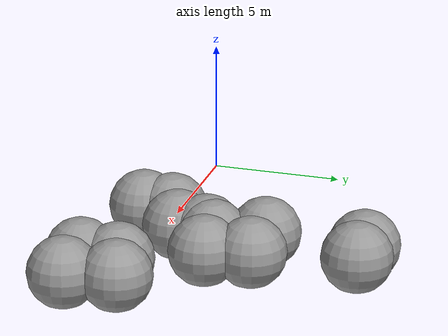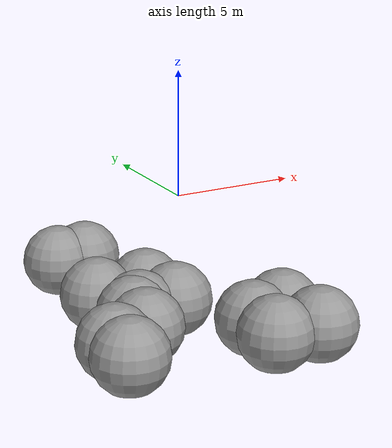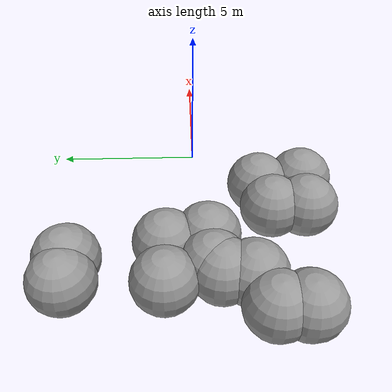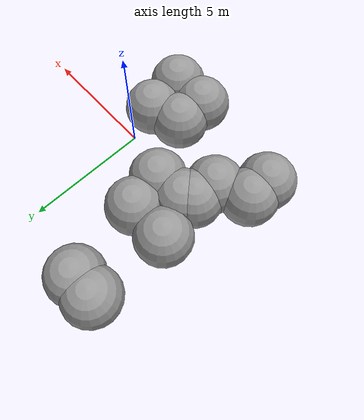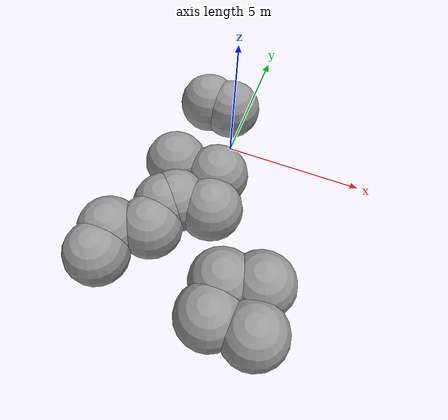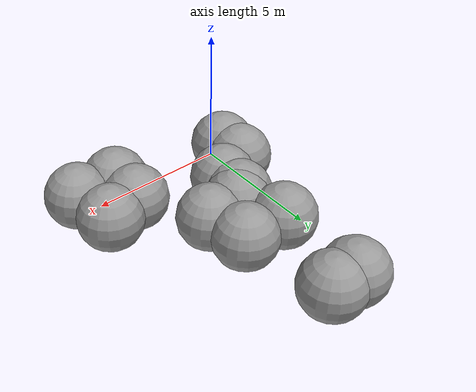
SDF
<sdf version="1.7">
 <world name="default">
  <gravity>0 0 -9.8</gravity>
  <magnetic_field>6e-06 2.3e-05 -4.2e-05</magnetic_field>
  <atmosphere type="adiabatic"/>
  <physics name="default_physics" default="0" type="ode">
   <max_step_size>0.001</max_step_size>
   <real_time_factor>1</real_time_factor>
   <real_time_update_rate>1000</real_time_update_rate>
  </physics>
  <scene>
   <ambient>0.4 0.4 0.4 1</ambient>
   <background>0.7 0.7 0.7 1</background>
   <shadows>1</shadows>
   <grid>0</grid>
   <origin_visual>0</origin_visual>
  </scene>
  <spherical_coordinates>
   <surface_model>EARTH_WGS84</surface_model>
   <latitude_deg>0</latitude_deg>
   <longitude_deg>0</longitude_deg>
   <elevation>0</elevation>
   <heading_deg>0</heading_deg>
  </spherical_coordinates>
  <light name="RetailShop_CeilingLight_001" type="point">
   <pose>2.77442 -3.62815 3.17847 0 -0 0</pose>
   <diffuse>0.5 0.5 0.5 1</diffuse>
   <specular>0.1 0.1 0.1 1</specular>
   <attenuation>
    <range>20</range>
    <constant>0.32</constant>
    <linear>0.01</linear>
    <quadratic>0.03</quadratic>
   </attenuation>
   <cast_shadows>0</cast_shadows>
   <direction>0 0 -1</direction>
   <spot><inner_angle>0</inner_angle><outer_angle>0</outer_angle><falloff>0</falloff></spot>
  </light>
  <light name="RetailShop_CeilingLight_002" type="point">
   <pose>5.38399 -5.38371 3.17847 0 -0 0</pose>
   <diffuse>0.5 0.5 0.5 1</diffuse>
   <specular>0.1 0.1 0.1 1</specular>
   <attenuation>
    <range>20</range>
    <constant>0.32</constant>
    <linear>0.01</linear>
    <quadratic>0.03</quadratic>
   </attenuation>
   <cast_shadows>0</cast_shadows>
   <direction>0 0 -1</direction>
   <spot><inner_angle>0</inner_angle><outer_angle>0</outer_angle><falloff>0</falloff></spot>
  </light>
  <light name="RetailShop_CeilingLight_003" type="point">
   <pose>5.38399 0.04192 3.17847 0 -0 0</pose>
   <diffuse>0.5 0.5 0.5 1</diffuse>
   <specular>0.1 0.1 0.1 1</specular>
   <attenuation>
    <range>20</range>
    <constant>0.32</constant>
    <linear>0.01</linear>
    <quadratic>0.03</quadratic>
   </attenuation>
   <cast_shadows>0</cast_shadows>
   <direction>0 0 -1</direction>
   <spot><inner_angle>0</inner_angle><outer_angle>0</outer_angle><falloff>0</falloff></spot>
  </light>
  <light name="RetailShop_CeilingLight_004" type="point">
   <pose>-3.21067 -5.38371 3.17847 0 -0 0</pose>
   <diffuse>0.5 0.5 0.5 1</diffuse>
   <specular>0.1 0.1 0.1 1</specular>
   <attenuation>
    <range>20</range>
    <constant>0.32</constant>
    <linear>0.01</linear>
    <quadratic>0.03</quadratic>
   </attenuation>
   <cast_shadows>0</cast_shadows>
   <direction>0 0 -1</direction>
   <spot><inner_angle>0</inner_angle><outer_angle>0</outer_angle><falloff>0</falloff></spot>
  </light>
  <light name="RetailShop_CeilingLight_005" type="point">
   <pose>-3.271 2.68593 3.17847 0 -0 0</pose>
   <diffuse>0.5 0.5 0.5 1</diffuse>
   <specular>0.1 0.1 0.1 1</specular>
   <attenuation>
    <range>20</range>
    <constant>0.32</constant>
    <linear>0.01</linear>
    <quadratic>0.03</quadratic>
   </attenuation>
   <cast_shadows>0</cast_shadows>
   <direction>0 0 -1</direction>
   <spot><inner_angle>0</inner_angle><outer_angle>0</outer_angle><falloff>0</falloff></spot>
  </light>
  <light name="RetailShop_CeilingLight_006" type="point">
   <pose>1.4932 4.69237 3.17847 0 -0 0</pose>
   <diffuse>0.5 0.5 0.5 1</diffuse>
   <specular>0.1 0.1 0.1 1</specular>
   <attenuation>
    <range>20</range>
    <constant>0.32</constant>
    <linear>0.01</linear>
    <quadratic>0.03</quadratic>
   </attenuation>
   <cast_shadows>0</cast_shadows>
   <direction>0 0 -1</direction>
   <spot><inner_angle>0</inner_angle><outer_angle>0</outer_angle><falloff>0</falloff></spot>
  </light>
  <model name="fly_spawn_13">
   <link name="link_0">
    <inertial>
     <mass>1</mass>
     <inertia><ixx>0.1</ixx><ixy>0</ixy><ixz>0</ixz><iyy>0.1</iyy><iyz>0</iyz><izz>0.1</izz></inertia>
     <pose>0 0 -2.0 0 -0 0</pose>
    </inertial>
    <visual name="visual">
     <pose>0 0 -2.0 0 -0 0</pose>
     <geometry><sphere><radius>1.5</radius></sphere></geometry>
     <material>
      <lighting>1</lighting>
      <script><uri>file://media/materials/scripts/gazebo.material</uri><name>Gazebo/Grey</name></script>
      <shader type="pixel"><normal_map>__default__</normal_map></shader>
      <ambient>0.3 0.3 0.3 1</ambient>
      <diffuse>0.7 0.7 0.7 1</diffuse>
      <specular>0.01 0.01 0.01 1</specular>
      <emissive>0 0 0 1</emissive>
     </material>
    </visual>
    <collision name="collision">
     <pose>0 0 -2.0 0 -0 0</pose>
     <geometry><sphere><radius>1.5</radius></sphere></geometry>
     <surface>
      <friction>
       <ode><mu>1</mu><mu2>1</mu2><fdir1>0 0 0</fdir1><slip1>0</slip1><slip2>0</slip2></ode>
       <torsional>
        <coefficient>1</coefficient>
        <patch_radius>0</patch_radius>
        <surface_radius>0</surface_radius>
        <use_patch_radius>1</use_patch_radius>
        <ode><slip>0</slip></ode>
       </torsional>
      </friction>
      <bounce><restitution_coefficient>0</restitution_coefficient><threshold>1e+06</threshold></bounce>
      <contact>
       <collide_without_contact>0</collide_without_contact>
       <collide_without_contact_bitmask>1</collide_without_contact_bitmask>
       <collide_bitmask>1</collide_bitmask>
       <ode>
        <soft_cfm>0</soft_cfm>
        <soft_erp>0.2</soft_erp>
        <kp>1e+13</kp>
        <kd>1</kd>
        <max_vel>0.01</max_vel>
        <min_depth>0</min_depth>
       </ode>
       <bullet>
        <split_impulse>1</split_impulse>
        <split_impulse_penetration_threshold>-0.01</split_impulse_penetration_threshold>
        <soft_cfm>0</soft_cfm>
        <soft_erp>0.2</soft_erp>
        <kp>1e+13</kp>
        <kd>1</kd>
       </bullet>
      </contact>
     </surface>
    </collision>
   </link>
   <static>1</static>
   <pose>-1.69652 5.44304 -2.0 0 -0 0</pose>
  </model>
  <model name="fly_spawn_0">
   <link name="link_0">
    <inertial>
     <mass>1</mass>
     <inertia><ixx>0.1</ixx><ixy>0</ixy><ixz>0</ixz><iyy>0.1</iyy><iyz>0</iyz><izz>0.1</izz></inertia>
     <pose>0 0 -2.0 0 -0 0</pose>
    </inertial>
    <visual name="visual">
     <pose>0 0 -2.0 0 -0 0</pose>
     <geometry><sphere><radius>1.5</radius></sphere></geometry>
     <material>
      <lighting>1</lighting>
      <script><uri>file://media/materials/scripts/gazebo.material</uri><name>Gazebo/Grey</name></script>
      <shader type="pixel"><normal_map>__default__</normal_map></shader>
      <ambient>0.3 0.3 0.3 1</ambient>
      <diffuse>0.7 0.7 0.7 1</diffuse>
      <specular>0.01 0.01 0.01 1</specular>
      <emissive>0 0 0 1</emissive>
     </material>
    </visual>
    <collision name="collision">
     <pose>0 0 -2.0 0 -0 0</pose>
     <geometry><sphere><radius>1.5</radius></sphere></geometry>
     <surface>
      <friction>
       <ode><mu>1</mu><mu2>1</mu2><fdir1>0 0 0</fdir1><slip1>0</slip1><slip2>0</slip2></ode>
       <torsional>
        <coefficient>1</coefficient>
        <patch_radius>0</patch_radius>
        <surface_radius>0</surface_radius>
        <use_patch_radius>1</use_patch_radius>
        <ode><slip>0</slip></ode>
       </torsional>
      </friction>
      <bounce><restitution_coefficient>0</restitution_coefficient><threshold>1e+06</threshold></bounce>
      <contact>
       <collide_without_contact>0</collide_without_contact>
       <collide_without_contact_bitmask>1</collide_without_contact_bitmask>
       <collide_bitmask>1</collide_bitmask>
       <ode>
        <soft_cfm>0</soft_cfm>
        <soft_erp>0.2</soft_erp>
        <kp>1e+13</kp>
        <kd>1</kd>
        <max_vel>0.01</max_vel>
        <min_depth>0</min_depth>
       </ode>
       <bullet>
        <split_impulse>1</split_impulse>
        <split_impulse_penetration_threshold>-0.01</split_impulse_penetration_threshold>
        <soft_cfm>0</soft_cfm>
        <soft_erp>0.2</soft_erp>
        <kp>1e+13</kp>
        <kd>1</kd>
       </bullet>
      </contact>
     </surface>
    </collision>
   </link>
   <static>1</static>
   <pose>-2.92844 5.46241 -2.0 0 -0 0</pose>
  </model>
  <model name="fly_spawn_1">
   <link name="link_0">
    <inertial>
     <mass>1</mass>
     <inertia><ixx>0.1</ixx><ixy>0</ixy><ixz>0</ixz><iyy>0.1</iyy><iyz>0</iyz><izz>0.1</izz></inertia>
     <pose>0 0 -2.0 0 -0 0</pose>
    </inertial>
    <visual name="visual">
     <pose>0 0 -2.0 0 -0 0</pose>
     <geometry><sphere><radius>1.5</radius></sphere></geometry>
     <material>
      <lighting>1</lighting>
      <script><uri>file://media/materials/scripts/gazebo.material</uri><name>Gazebo/Grey</name></script>
      <shader type="pixel"><normal_map>__default__</normal_map></shader>
      <ambient>0.3 0.3 0.3 1</ambient>
      <diffuse>0.7 0.7 0.7 1</diffuse>
      <specular>0.01 0.01 0.01 1</specular>
      <emissive>0 0 0 1</emissive>
     </material>
    </visual>
    <collision name="collision">
     <pose>0 0 -2.0 0 -0 0</pose>
     <geometry><sphere><radius>1.5</radius></sphere></geometry>
     <surface>
      <friction>
       <ode><mu>1</mu><mu2>1</mu2><fdir1>0 0 0</fdir1><slip1>0</slip1><slip2>0</slip2></ode>
       <torsional>
        <coefficient>1</coefficient>
        <patch_radius>0</patch_radius>
        <surface_radius>0</surface_radius>
        <use_patch_radius>1</use_patch_radius>
        <ode><slip>0</slip></ode>
       </torsional>
      </friction>
      <bounce><restitution_coefficient>0</restitution_coefficient><threshold>1e+06</threshold></bounce>
      <contact>
       <collide_without_contact>0</collide_without_contact>
       <collide_without_contact_bitmask>1</collide_without_contact_bitmask>
       <collide_bitmask>1</collide_bitmask>
       <ode>
        <soft_cfm>0</soft_cfm>
        <soft_erp>0.2</soft_erp>
        <kp>1e+13</kp>
        <kd>1</kd>
        <max_vel>0.01</max_vel>
        <min_depth>0</min_depth>
       </ode>
       <bullet>
        <split_impulse>1</split_impulse>
        <split_impulse_penetration_threshold>-0.01</split_impulse_penetration_threshold>
        <soft_cfm>0</soft_cfm>
        <soft_erp>0.2</soft_erp>
        <kp>1e+13</kp>
        <kd>1</kd>
       </bullet>
      </contact>
     </surface>
    </collision>
   </link>
   <static>1</static>
   <pose>-3.03418 1.22246 -2.0 0 -0 0</pose>
  </model>
  <model name="fly_spawn_2">
   <link name="link_0">
    <inertial>
     <mass>1</mass>
     <inertia><ixx>0.1</ixx><ixy>0</ixy><ixz>0</ixz><iyy>0.1</iyy><iyz>0</iyz><izz>0.1</izz></inertia>
     <pose>0 0 -2.0 0 -0 0</pose>
    </inertial>
    <visual name="visual">
     <pose>0 0 -2.0 0 -0 0</pose>
     <geometry><sphere><radius>1.5</radius></sphere></geometry>
     <material>
      <lighting>1</lighting>
      <script><uri>file://media/materials/scripts/gazebo.material</uri><name>Gazebo/Grey</name></script>
      <shader type="pixel"><normal_map>__default__</normal_map></shader>
      <ambient>0.3 0.3 0.3 1</ambient>
      <diffuse>0.7 0.7 0.7 1</diffuse>
      <specular>0.01 0.01 0.01 1</specular>
      <emissive>0 0 0 1</emissive>
     </material>
    </visual>
    <collision name="collision">
     <pose>0 0 -2.0 0 -0 0</pose>
     <geometry><sphere><radius>1.5</radius></sphere></geometry>
     <surface>
      <friction>
       <ode><mu>1</mu><mu2>1</mu2><fdir1>0 0 0</fdir1><slip1>0</slip1><slip2>0</slip2></ode>
       <torsional>
        <coefficient>1</coefficient>
        <patch_radius>0</patch_radius>
        <surface_radius>0</surface_radius>
        <use_patch_radius>1</use_patch_radius>
        <ode><slip>0</slip></ode>
       </torsional>
      </friction>
      <bounce><restitution_coefficient>0</restitution_coefficient><threshold>1e+06</threshold></bounce>
      <contact>
       <collide_without_contact>0</collide_without_contact>
       <collide_without_contact_bitmask>1</collide_without_contact_bitmask>
       <collide_bitmask>1</collide_bitmask>
       <ode>
        <soft_cfm>0</soft_cfm>
        <soft_erp>0.2</soft_erp>
        <kp>1e+13</kp>
        <kd>1</kd>
        <max_vel>0.01</max_vel>
        <min_depth>0</min_depth>
       </ode>
       <bullet>
        <split_impulse>1</split_impulse>
        <split_impulse_penetration_threshold>-0.01</split_impulse_penetration_threshold>
        <soft_cfm>0</soft_cfm>
        <soft_erp>0.2</soft_erp>
        <kp>1e+13</kp>
        <kd>1</kd>
       </bullet>
      </contact>
     </surface>
    </collision>
   </link>
   <static>1</static>
   <pose>-0.891595 1.20124 -2.0 0 -0 0</pose>
  </model>
  <model name="fly_spawn_3">
   <link name="link_0">
    <inertial>
     <mass>1</mass>
     <inertia><ixx>0.1</ixx><ixy>0</ixy><ixz>0</ixz><iyy>0.1</iyy><iyz>0</iyz><izz>0.1</izz></inertia>
     <pose>0 0 -2.0 0 -0 0</pose>
    </inertial>
    <visual name="visual">
     <pose>0 0 -2.0 0 -0 0</pose>
     <geometry><sphere><radius>1.5</radius></sphere></geometry>
     <material>
      <lighting>1</lighting>
      <script><uri>file://media/materials/scripts/gazebo.material</uri><name>Gazebo/Grey</name></script>
      <shader type="pixel"><normal_map>__default__</normal_map></shader>
      <ambient>0.3 0.3 0.3 1</ambient>
      <diffuse>0.7 0.7 0.7 1</diffuse>
      <specular>0.01 0.01 0.01 1</specular>
      <emissive>0 0 0 1</emissive>
     </material>
    </visual>
    <collision name="collision">
     <pose>0 0 -2.0 0 -0 0</pose>
     <geometry><sphere><radius>1.5</radius></sphere></geometry>
     <surface>
      <friction>
       <ode><mu>1</mu><mu2>1</mu2><fdir1>0 0 0</fdir1><slip1>0</slip1><slip2>0</slip2></ode>
       <torsional>
        <coefficient>1</coefficient>
        <patch_radius>0</patch_radius>
        <surface_radius>0</surface_radius>
        <use_patch_radius>1</use_patch_radius>
        <ode><slip>0</slip></ode>
       </torsional>
      </friction>
      <bounce><restitution_coefficient>0</restitution_coefficient><threshold>1e+06</threshold></bounce>
      <contact>
       <collide_without_contact>0</collide_without_contact>
       <collide_without_contact_bitmask>1</collide_without_contact_bitmask>
       <collide_bitmask>1</collide_bitmask>
       <ode>
        <soft_cfm>0</soft_cfm>
        <soft_erp>0.2</soft_erp>
        <kp>1e+13</kp>
        <kd>1</kd>
        <max_vel>0.01</max_vel>
        <min_depth>0</min_depth>
       </ode>
       <bullet>
        <split_impulse>1</split_impulse>
        <split_impulse_penetration_threshold>-0.01</split_impulse_penetration_threshold>
        <soft_cfm>0</soft_cfm>
        <soft_erp>0.2</soft_erp>
        <kp>1e+13</kp>
        <kd>1</kd>
       </bullet>
      </contact>
     </surface>
    </collision>
   </link>
   <static>1</static>
   <pose>-0.510095 -0.677173 -2.0 0 -0 0</pose>
  </model>
  <model name="fly_spawn_4">
   <link name="link_0">
    <inertial>
     <mass>1</mass>
     <inertia><ixx>0.1</ixx><ixy>0</ixy><ixz>0</ixz><iyy>0.1</iyy><iyz>0</iyz><izz>0.1</izz></inertia>
     <pose>0 0 -2.0 0 -0 0</pose>
    </inertial>
    <visual name="visual">
     <pose>0 0 -2.0 0 -0 0</pose>
     <geometry><sphere><radius>1.5</radius></sphere></geometry>
     <material>
      <lighting>1</lighting>
      <script><uri>file://media/materials/scripts/gazebo.material</uri><name>Gazebo/Grey</name></script>
      <shader type="pixel"><normal_map>__default__</normal_map></shader>
      <ambient>0.3 0.3 0.3 1</ambient>
      <diffuse>0.7 0.7 0.7 1</diffuse>
      <specular>0.01 0.01 0.01 1</specular>
      <emissive>0 0 0 1</emissive>
     </material>
    </visual>
    <collision name="collision">
     <pose>0 0 -2.0 0 -0 0</pose>
     <geometry><sphere><radius>1.5</radius></sphere></geometry>
     <surface>
      <friction>
       <ode><mu>1</mu><mu2>1</mu2><fdir1>0 0 0</fdir1><slip1>0</slip1><slip2>0</slip2></ode>
       <torsional>
        <coefficient>1</coefficient>
        <patch_radius>0</patch_radius>
        <surface_radius>0</surface_radius>
        <use_patch_radius>1</use_patch_radius>
        <ode><slip>0</slip></ode>
       </torsional>
      </friction>
      <bounce><restitution_coefficient>0</restitution_coefficient><threshold>1e+06</threshold></bounce>
      <contact>
       <collide_without_contact>0</collide_without_contact>
       <collide_without_contact_bitmask>1</collide_without_contact_bitmask>
       <collide_bitmask>1</collide_bitmask>
       <ode>
        <soft_cfm>0</soft_cfm>
        <soft_erp>0.2</soft_erp>
        <kp>1e+13</kp>
        <kd>1</kd>
        <max_vel>0.01</max_vel>
        <min_depth>0</min_depth>
       </ode>
       <bullet>
        <split_impulse>1</split_impulse>
        <split_impulse_penetration_threshold>-0.01</split_impulse_penetration_threshold>
        <soft_cfm>0</soft_cfm>
        <soft_erp>0.2</soft_erp>
        <kp>1e+13</kp>
        <kd>1</kd>
       </bullet>
      </contact>
     </surface>
    </collision>
   </link>
   <static>1</static>
   <pose>-2.15879 -0.819906 -2.0 0 -0 0</pose>
  </model>
  <model name="fly_spawn_5">
   <link name="link_0">
    <inertial>
     <mass>1</mass>
     <inertia><ixx>0.1</ixx><ixy>0</ixy><ixz>0</ixz><iyy>0.1</iyy><iyz>0</iyz><izz>0.1</izz></inertia>
     <pose>0 0 -2.0 0 -0 0</pose>
    </inertial>
    <visual name="visual">
     <pose>0 0 -2.0 0 -0 0</pose>
     <geometry><sphere><radius>1.5</radius></sphere></geometry>
     <material>
      <lighting>1</lighting>
      <script><uri>file://media/materials/scripts/gazebo.material</uri><name>Gazebo/Grey</name></script>
      <shader type="pixel"><normal_map>__default__</normal_map></shader>
      <ambient>0.3 0.3 0.3 1</ambient>
      <diffuse>0.7 0.7 0.7 1</diffuse>
      <specular>0.01 0.01 0.01 1</specular>
      <emissive>0 0 0 1</emissive>
     </material>
    </visual>
    <collision name="collision">
     <pose>0 0 -2.0 0 -0 0</pose>
     <geometry><sphere><radius>1.5</radius></sphere></geometry>
     <surface>
      <friction>
       <ode><mu>1</mu><mu2>1</mu2><fdir1>0 0 0</fdir1><slip1>0</slip1><slip2>0</slip2></ode>
       <torsional>
        <coefficient>1</coefficient>
        <patch_radius>0</patch_radius>
        <surface_radius>0</surface_radius>
        <use_patch_radius>1</use_patch_radius>
        <ode><slip>0</slip></ode>
       </torsional>
      </friction>
      <bounce><restitution_coefficient>0</restitution_coefficient><threshold>1e+06</threshold></bounce>
      <contact>
       <collide_without_contact>0</collide_without_contact>
       <collide_without_contact_bitmask>1</collide_without_contact_bitmask>
       <collide_bitmask>1</collide_bitmask>
       <ode>
        <soft_cfm>0</soft_cfm>
        <soft_erp>0.2</soft_erp>
        <kp>1e+13</kp>
        <kd>1</kd>
        <max_vel>0.01</max_vel>
        <min_depth>0</min_depth>
       </ode>
       <bullet>
        <split_impulse>1</split_impulse>
        <split_impulse_penetration_threshold>-0.01</split_impulse_penetration_threshold>
        <soft_cfm>0</soft_cfm>
        <soft_erp>0.2</soft_erp>
        <kp>1e+13</kp>
        <kd>1</kd>
       </bullet>
      </contact>
     </surface>
    </collision>
   </link>
   <static>1</static>
   <pose>-2.58093 -1.20676 -2.0 0 -0 0</pose>
  </model>
  <model name="fly_spawn_6">
   <link name="link_0">
    <inertial>
     <mass>1</mass>
     <inertia><ixx>0.1</ixx><ixy>0</ixy><ixz>0</ixz><iyy>0.1</iyy><iyz>0</iyz><izz>0.1</izz></inertia>
     <pose>0 0 -2.0 0 -0 0</pose>
    </inertial>
    <visual name="visual">
     <pose>0 0 -2.0 0 -0 0</pose>
     <geometry><sphere><radius>1.5</radius></sphere></geometry>
     <material>
      <lighting>1</lighting>
      <script><uri>file://media/materials/scripts/gazebo.material</uri><name>Gazebo/Grey</name></script>
      <shader type="pixel"><normal_map>__default__</normal_map></shader>
      <ambient>0.3 0.3 0.3 1</ambient>
      <diffuse>0.7 0.7 0.7 1</diffuse>
      <specular>0.01 0.01 0.01 1</specular>
      <emissive>0 0 0 1</emissive>
     </material>
    </visual>
    <collision name="collision">
     <pose>0 0 -2.0 0 -0 0</pose>
     <geometry><sphere><radius>1.5</radius></sphere></geometry>
     <surface>
      <friction>
       <ode><mu>1</mu><mu2>1</mu2><fdir1>0 0 0</fdir1><slip1>0</slip1><slip2>0</slip2></ode>
       <torsional>
        <coefficient>1</coefficient>
        <patch_radius>0</patch_radius>
        <surface_radius>0</surface_radius>
        <use_patch_radius>1</use_patch_radius>
        <ode><slip>0</slip></ode>
       </torsional>
      </friction>
      <bounce><restitution_coefficient>0</restitution_coefficient><threshold>1e+06</threshold></bounce>
      <contact>
       <collide_without_contact>0</collide_without_contact>
       <collide_without_contact_bitmask>1</collide_without_contact_bitmask>
       <collide_bitmask>1</collide_bitmask>
       <ode>
        <soft_cfm>0</soft_cfm>
        <soft_erp>0.2</soft_erp>
        <kp>1e+13</kp>
        <kd>1</kd>
        <max_vel>0.01</max_vel>
        <min_depth>0</min_depth>
       </ode>
       <bullet>
        <split_impulse>1</split_impulse>
        <split_impulse_penetration_threshold>-0.01</split_impulse_penetration_threshold>
        <soft_cfm>0</soft_cfm>
        <soft_erp>0.2</soft_erp>
        <kp>1e+13</kp>
        <kd>1</kd>
       </bullet>
      </contact>
     </surface>
    </collision>
   </link>
   <static>1</static>
   <pose>-2.73176 -2.51046 -2.0 0 -0 0</pose>
  </model>
  <model name="fly_spawn_7">
   <link name="link_0">
    <inertial>
     <mass>1</mass>
     <inertia><ixx>0.1</ixx><ixy>0</ixy><ixz>0</ixz><iyy>0.1</iyy><iyz>0</iyz><izz>0.1</izz></inertia>
     <pose>0 0 -2.0 0 -0 0</pose>
    </inertial>
    <visual name="visual">
     <pose>0 0 -2.0 0 -0 0</pose>
     <geometry><sphere><radius>1.5</radius></sphere></geometry>
     <material>
      <lighting>1</lighting>
      <script><uri>file://media/materials/scripts/gazebo.material</uri><name>Gazebo/Grey</name></script>
      <shader type="pixel"><normal_map>__default__</normal_map></shader>
      <ambient>0.3 0.3 0.3 1</ambient>
      <diffuse>0.7 0.7 0.7 1</diffuse>
      <specular>0.01 0.01 0.01 1</specular>
      <emissive>0 0 0 1</emissive>
     </material>
    </visual>
    <collision name="collision">
     <pose>0 0 -2.0 0 -0 0</pose>
     <geometry><sphere><radius>1.5</radius></sphere></geometry>
     <surface>
      <friction>
       <ode><mu>1</mu><mu2>1</mu2><fdir1>0 0 0</fdir1><slip1>0</slip1><slip2>0</slip2></ode>
       <torsional>
        <coefficient>1</coefficient>
        <patch_radius>0</patch_radius>
        <surface_radius>0</surface_radius>
        <use_patch_radius>1</use_patch_radius>
        <ode><slip>0</slip></ode>
       </torsional>
      </friction>
      <bounce><restitution_coefficient>0</restitution_coefficient><threshold>1e+06</threshold></bounce>
      <contact>
       <collide_without_contact>0</collide_without_contact>
       <collide_without_contact_bitmask>1</collide_without_contact_bitmask>
       <collide_bitmask>1</collide_bitmask>
       <ode>
        <soft_cfm>0</soft_cfm>
        <soft_erp>0.2</soft_erp>
        <kp>1e+13</kp>
        <kd>1</kd>
        <max_vel>0.01</max_vel>
        <min_depth>0</min_depth>
       </ode>
       <bullet>
        <split_impulse>1</split_impulse>
        <split_impulse_penetration_threshold>-0.01</split_impulse_penetration_threshold>
        <soft_cfm>0</soft_cfm>
        <soft_erp>0.2</soft_erp>
        <kp>1e+13</kp>
        <kd>1</kd>
       </bullet>
      </contact>
     </surface>
    </collision>
   </link>
   <static>1</static>
   <pose>-4.37959 -4.5486 -2.0 0 -0 0</pose>
  </model>
  <model name="fly_spawn_8">
   <link name="link_0">
    <inertial>
     <mass>1</mass>
     <inertia><ixx>0.1</ixx><ixy>0</ixy><ixz>0</ixz><iyy>0.1</iyy><iyz>0</iyz><izz>0.1</izz></inertia>
     <pose>0 0 -2.0 0 -0 0</pose>
    </inertial>
    <visual name="visual">
     <pose>0 0 -2.0 0 -0 0</pose>
     <geometry><sphere><radius>1.5</radius></sphere></geometry>
     <material>
      <lighting>1</lighting>
      <script><uri>file://media/materials/scripts/gazebo.material</uri><name>Gazebo/Grey</name></script>
      <shader type="pixel"><normal_map>__default__</normal_map></shader>
      <ambient>0.3 0.3 0.3 1</ambient>
      <diffuse>0.7 0.7 0.7 1</diffuse>
      <specular>0.01 0.01 0.01 1</specular>
      <emissive>0 0 0 1</emissive>
     </material>
    </visual>
    <collision name="collision">
     <pose>0 0 -2.0 0 -0 0</pose>
     <geometry><sphere><radius>1.5</radius></sphere></geometry>
     <surface>
      <friction>
       <ode><mu>1</mu><mu2>1</mu2><fdir1>0 0 0</fdir1><slip1>0</slip1><slip2>0</slip2></ode>
       <torsional>
        <coefficient>1</coefficient>
        <patch_radius>0</patch_radius>
        <surface_radius>0</surface_radius>
        <use_patch_radius>1</use_patch_radius>
        <ode><slip>0</slip></ode>
       </torsional>
      </friction>
      <bounce><restitution_coefficient>0</restitution_coefficient><threshold>1e+06</threshold></bounce>
      <contact>
       <collide_without_contact>0</collide_without_contact>
       <collide_without_contact_bitmask>1</collide_without_contact_bitmask>
       <collide_bitmask>1</collide_bitmask>
       <ode>
        <soft_cfm>0</soft_cfm>
        <soft_erp>0.2</soft_erp>
        <kp>1e+13</kp>
        <kd>1</kd>
        <max_vel>0.01</max_vel>
        <min_depth>0</min_depth>
       </ode>
       <bullet>
        <split_impulse>1</split_impulse>
        <split_impulse_penetration_threshold>-0.01</split_impulse_penetration_threshold>
        <soft_cfm>0</soft_cfm>
        <soft_erp>0.2</soft_erp>
        <kp>1e+13</kp>
        <kd>1</kd>
       </bullet>
      </contact>
     </surface>
    </collision>
   </link>
   <static>1</static>
   <pose>-4.367 -3.27817 -2.0 0 -0 0</pose>
  </model>
  <model name="fly_spawn_9">
   <link name="link_0">
    <inertial>
     <mass>1</mass>
     <inertia><ixx>0.1</ixx><ixy>0</ixy><ixz>0</ixz><iyy>0.1</iyy><iyz>0</iyz><izz>0.1</izz></inertia>
     <pose>0 0 -2.0 0 -0 0</pose>
    </inertial>
    <visual name="visual">
     <pose>0 0 -2.0 0 -0 0</pose>
     <geometry><sphere><radius>1.5</radius></sphere></geometry>
     <material>
      <lighting>1</lighting>
      <script><uri>file://media/materials/scripts/gazebo.material</uri><name>Gazebo/Grey</name></script>
      <shader type="pixel"><normal_map>__default__</normal_map></shader>
      <ambient>0.3 0.3 0.3 1</ambient>
      <diffuse>0.7 0.7 0.7 1</diffuse>
      <specular>0.01 0.01 0.01 1</specular>
      <emissive>0 0 0 1</emissive>
     </material>
    </visual>
    <collision name="collision">
     <pose>0 0 -2.0 0 -0 0</pose>
     <geometry><sphere><radius>1.5</radius></sphere></geometry>
     <surface>
      <friction>
       <ode><mu>1</mu><mu2>1</mu2><fdir1>0 0 0</fdir1><slip1>0</slip1><slip2>0</slip2></ode>
       <torsional>
        <coefficient>1</coefficient>
        <patch_radius>0</patch_radius>
        <surface_radius>0</surface_radius>
        <use_patch_radius>1</use_patch_radius>
        <ode><slip>0</slip></ode>
       </torsional>
      </friction>
      <bounce><restitution_coefficient>0</restitution_coefficient><threshold>1e+06</threshold></bounce>
      <contact>
       <collide_without_contact>0</collide_without_contact>
       <collide_without_contact_bitmask>1</collide_without_contact_bitmask>
       <collide_bitmask>1</collide_bitmask>
       <ode>
        <soft_cfm>0</soft_cfm>
        <soft_erp>0.2</soft_erp>
        <kp>1e+13</kp>
        <kd>1</kd>
        <max_vel>0.01</max_vel>
        <min_depth>0</min_depth>
       </ode>
       <bullet>
        <split_impulse>1</split_impulse>
        <split_impulse_penetration_threshold>-0.01</split_impulse_penetration_threshold>
        <soft_cfm>0</soft_cfm>
        <soft_erp>0.2</soft_erp>
        <kp>1e+13</kp>
        <kd>1</kd>
       </bullet>
      </contact>
     </surface>
    </collision>
   </link>
   <static>1</static>
   <pose>1.21164 -5.3827 -2.0 0 -0 0</pose>
  </model>
  <model name="fly_spawn_10">
   <link name="link_0">
    <inertial>
     <mass>1</mass>
     <inertia><ixx>0.1</ixx><ixy>0</ixy><ixz>0</ixz><iyy>0.1</iyy><iyz>0</iyz><izz>0.1</izz></inertia>
     <pose>0 0 -2.0 0 -0 0</pose>
    </inertial>
    <visual name="visual">
     <pose>0 0 -2.0 0 -0 0</pose>
     <geometry><sphere><radius>1.5</radius></sphere></geometry>
     <material>
      <lighting>1</lighting>
      <script><uri>file://media/materials/scripts/gazebo.material</uri><name>Gazebo/Grey</name></script>
      <shader type="pixel"><normal_map>__default__</normal_map></shader>
      <ambient>0.3 0.3 0.3 1</ambient>
      <diffuse>0.7 0.7 0.7 1</diffuse>
      <specular>0.01 0.01 0.01 1</specular>
      <emissive>0 0 0 1</emissive>
     </material>
    </visual>
    <collision name="collision">
     <pose>0 0 -2.0 0 -0 0</pose>
     <geometry><sphere><radius>1.5</radius></sphere></geometry>
     <surface>
      <friction>
       <ode><mu>1</mu><mu2>1</mu2><fdir1>0 0 0</fdir1><slip1>0</slip1><slip2>0</slip2></ode>
       <torsional>
        <coefficient>1</coefficient>
        <patch_radius>0</patch_radius>
        <surface_radius>0</surface_radius>
        <use_patch_radius>1</use_patch_radius>
        <ode><slip>0</slip></ode>
       </torsional>
      </friction>
      <bounce><restitution_coefficient>0</restitution_coefficient><threshold>1e+06</threshold></bounce>
      <contact>
       <collide_without_contact>0</collide_without_contact>
       <collide_without_contact_bitmask>1</collide_without_contact_bitmask>
       <collide_bitmask>1</collide_bitmask>
       <ode>
        <soft_cfm>0</soft_cfm>
        <soft_erp>0.2</soft_erp>
        <kp>1e+13</kp>
        <kd>1</kd>
        <max_vel>0.01</max_vel>
        <min_depth>0</min_depth>
       </ode>
       <bullet>
        <split_impulse>1</split_impulse>
        <split_impulse_penetration_threshold>-0.01</split_impulse_penetration_threshold>
        <soft_cfm>0</soft_cfm>
        <soft_erp>0.2</soft_erp>
        <kp>1e+13</kp>
        <kd>1</kd>
       </bullet>
      </contact>
     </surface>
    </collision>
   </link>
   <static>1</static>
   <pose>3.1475 -5.42406 -2.0 0 -0 0</pose>
  </model>
  <model name="fly_spawn_11">
   <link name="link_0">
    <inertial>
     <mass>1</mass>
     <inertia><ixx>0.1</ixx><ixy>0</ixy><ixz>0</ixz><iyy>0.1</iyy><iyz>0</iyz><izz>0.1</izz></inertia>
     <pose>0 0 -2.0 0 -0 0</pose>
    </inertial>
    <visual name="visual">
     <pose>0 0 -2.0 0 -0 0</pose>
     <geometry><sphere><radius>1.5</radius></sphere></geometry>
     <material>
      <lighting>1</lighting>
      <script><uri>file://media/materials/scripts/gazebo.material</uri><name>Gazebo/Grey</name></script>
      <shader type="pixel"><normal_map>__default__</normal_map></shader>
      <ambient>0.3 0.3 0.3 1</ambient>
      <diffuse>0.7 0.7 0.7 1</diffuse>
      <specular>0.01 0.01 0.01 1</specular>
      <emissive>0 0 0 1</emissive>
     </material>
    </visual>
    <collision name="collision">
     <pose>0 0 -2.0 0 -0 0</pose>
     <geometry><sphere><radius>1.5</radius></sphere></geometry>
     <surface>
      <friction>
       <ode><mu>1</mu><mu2>1</mu2><fdir1>0 0 0</fdir1><slip1>0</slip1><slip2>0</slip2></ode>
       <torsional>
        <coefficient>1</coefficient>
        <patch_radius>0</patch_radius>
        <surface_radius>0</surface_radius>
        <use_patch_radius>1</use_patch_radius>
        <ode><slip>0</slip></ode>
       </torsional>
      </friction>
      <bounce><restitution_coefficient>0</restitution_coefficient><threshold>1e+06</threshold></bounce>
      <contact>
       <collide_without_contact>0</collide_without_contact>
       <collide_without_contact_bitmask>1</collide_without_contact_bitmask>
       <collide_bitmask>1</collide_bitmask>
       <ode>
        <soft_cfm>0</soft_cfm>
        <soft_erp>0.2</soft_erp>
        <kp>1e+13</kp>
        <kd>1</kd>
        <max_vel>0.01</max_vel>
        <min_depth>0</min_depth>
       </ode>
       <bullet>
        <split_impulse>1</split_impulse>
        <split_impulse_penetration_threshold>-0.01</split_impulse_penetration_threshold>
        <soft_cfm>0</soft_cfm>
        <soft_erp>0.2</soft_erp>
        <kp>1e+13</kp>
        <kd>1</kd>
       </bullet>
      </contact>
     </surface>
    </collision>
   </link>
   <static>1</static>
   <pose>2.82035 -3.30205 -2.0 0 -0 0</pose>
  </model>
  <model name="fly_spawn_12">
   <link name="link_0">
    <inertial>
     <mass>1</mass>
     <inertia><ixx>0.1</ixx><ixy>0</ixy><ixz>0</ixz><iyy>0.1</iyy><iyz>0</iyz><izz>0.1</izz></inertia>
     <pose>0 0 -2.0 0 -0 0</pose>
    </inertial>
    <visual name="visual">
     <pose>0 0 -2.0 0 -0 0</pose>
     <geometry><sphere><radius>1.5</radius></sphere></geometry>
     <material>
      <lighting>1</lighting>
      <script><uri>file://media/materials/scripts/gazebo.material</uri><name>Gazebo/Grey</name></script>
      <shader type="pixel"><normal_map>__default__</normal_map></shader>
      <ambient>0.3 0.3 0.3 1</ambient>
      <diffuse>0.7 0.7 0.7 1</diffuse>
      <specular>0.01 0.01 0.01 1</specular>
      <emissive>0 0 0 1</emissive>
     </material>
    </visual>
    <collision name="collision">
     <pose>0 0 -2.0 0 -0 0</pose>
     <geometry><sphere><radius>1.5</radius></sphere></geometry>
     <surface>
      <friction>
       <ode><mu>1</mu><mu2>1</mu2><fdir1>0 0 0</fdir1><slip1>0</slip1><slip2>0</slip2></ode>
       <torsional>
        <coefficient>1</coefficient>
        <patch_radius>0</patch_radius>
        <surface_radius>0</surface_radius>
        <use_patch_radius>1</use_patch_radius>
        <ode><slip>0</slip></ode>
       </torsional>
      </friction>
      <bounce><restitution_coefficient>0</restitution_coefficient><threshold>1e+06</threshold></bounce>
      <contact>
       <collide_without_contact>0</collide_without_contact>
       <collide_without_contact_bitmask>1</collide_without_contact_bitmask>
       <collide_bitmask>1</collide_bitmask>
       <ode>
        <soft_cfm>0</soft_cfm>
        <soft_erp>0.2</soft_erp>
        <kp>1e+13</kp>
        <kd>1</kd>
        <max_vel>0.01</max_vel>
        <min_depth>0</min_depth>
       </ode>
       <bullet>
        <split_impulse>1</split_impulse>
        <split_impulse_penetration_threshold>-0.01</split_impulse_penetration_threshold>
        <soft_cfm>0</soft_cfm>
        <soft_erp>0.2</soft_erp>
        <kp>1e+13</kp>
        <kd>1</kd>
       </bullet>
      </contact>
     </surface>
    </collision>
   </link>
   <static>1</static>
   <pose>1.20576 -3.77319 -2.0 0 -0 0</pose>
  </model>
 </world>
</sdf>
